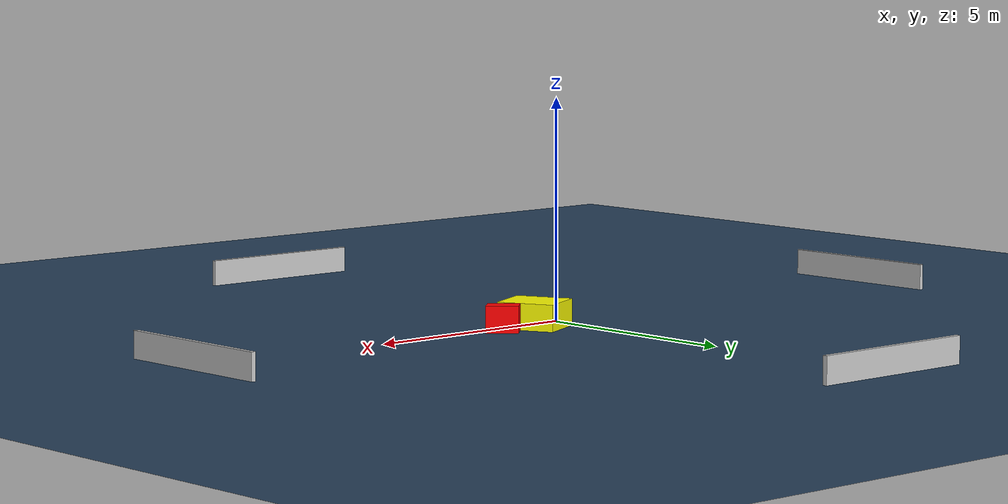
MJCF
<?xml version="1.0" ?>
<mujoco model="generated_environment">
  <option timestep="0.01" integrator="RK4" cone="elliptic"/>
  <default>
    <geom density="1"/>
  </default>
  <asset>
    <texture builtin="gradient" height="3072" name="skybox" rgb1="0.3 0.5 0.7" rgb2="0 0 0" type="skybox" width="512"/>
    <texture builtin="checker" height="300" name="groundplane" rgb1="0.2 0.3 0.4" rgb2="0.1 0.2 0.3" type="2d" width="300"/>
    <material name="groundplane" reflectance="0.2" texrepeat="5 5" texture="groundplane"/>
  </asset>
  <worldbody>
    <light dir="0 0 -1" directional="true" pos="0 0 1.5"/>
    <geom condim="3" friction="0.5 0.005 0.001" material="groundplane" name="floor" pos="0 0 0" size="0 0 0.05" type="plane"/>
    <body name="walls">
      <geom name="wall_1" condim="4" pos="-10.0 0.0 0.3" rgba="0.800000011920929 0.800000011920929 0.800000011920929 1.0" size="0.05 2.0 0.3" type="box"/>
      <geom name="wall_2" condim="4" pos="10.0 0.0 0.3" rgba="0.800000011920929 0.800000011920929 0.800000011920929 1.0" size="0.05 2.0 0.3" type="box"/>
      <geom name="wall_3" condim="4" pos="0.0 -10.0 0.3" rgba="0.800000011920929 0.800000011920929 0.800000011920929 1.0" size="2.0 0.05 0.3" type="box"/>
      <geom name="wall_4" condim="4" pos="0.0 10.0 0.3" rgba="0.800000011920929 0.800000011920929 0.800000011920929 1.0" size="2.0 0.05 0.3" type="box"/>
    </body>
    <body name="robot">
      <joint name="joint_x" type="slide" pos="0 0 0" axis="1 0 0"/>
      <joint name="joint_y" type="slide" pos="0 0 0" axis="0 1 0"/>
      <geom name="robot" type="cylinder" pos="0.0 0.0 0.2" size="0.2 0.2 0.0" mass="5.0" friction="1.0 0.005 0.0001" condim="4" rgba="1.0 1.0 0.0 1.0"/>
    </body>
    <body name="obstacle_1_movable">
      <geom name="obstacle_1_movable" condim="4" pos="0.9212921904543152 0.3047376390392359 0.3" euler="0 0 295.43887819199415" friction="0.0 0.005 0.001" rgba="1.0 1.0 0.0 1.0" size="0.656240634846093 0.5746083194436877 0.3" type="box" mass="0.1"/>
      <joint type="free"/>
    </body>
    <body name="obstacle_2_static">
      <geom name="obstacle_2_static" condim="4" pos="1.9098586751203108 0.3631935640911437 0.3" euler="0 0 222.95978059272375" friction="0.0 0.005 0.001" rgba="1.0 0.0 0.0 1.0" size="0.24040645518488352 0.3582254941126646 0.3" type="box"/>
    </body>
  </worldbody>
  <actuator>
    <motor name="actuator_x" joint="joint_x" gear="1" ctrlrange="-1 1"/>
    <motor name="actuator_y" joint="joint_y" gear="1" ctrlrange="-1 1"/>
  </actuator>
</mujoco>
